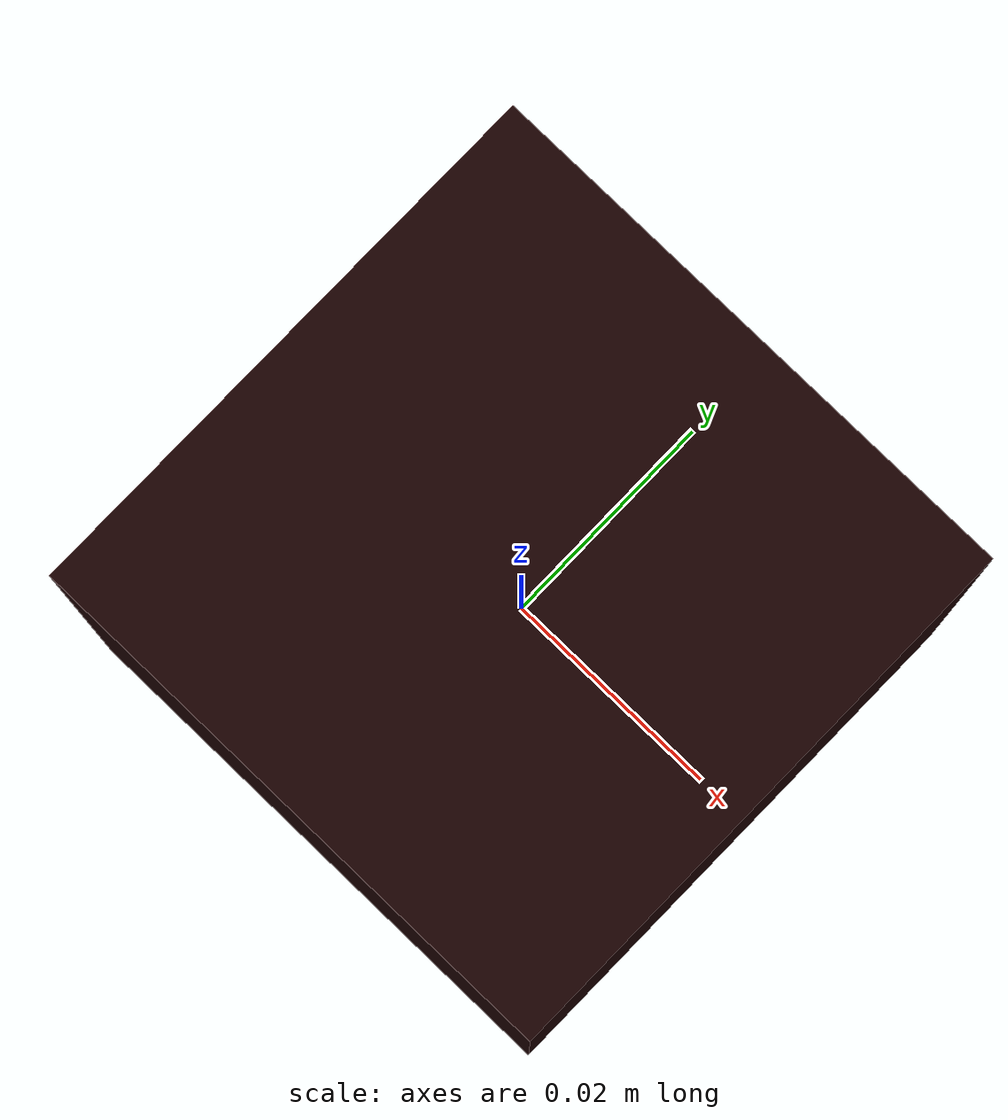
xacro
<?xml version="1.0"?>

<robot name="mobile_manipulator">
<!--################################# BASE #####################################-->
<link name="world"/>

<joint name="fixed" type="fixed">
	<parent link="world"/>
	<child link="base_link"/>
</joint>

<link name="base_link">
    <inertial>
      <origin
        xyz="0.0030946 4.78250032638821E-11 0.053305"
        rpy="0 0 0" />
      <mass
        value="0.1" />
      <inertia
        ixx="0.774276574699151"
        ixy="-1.03781944357671E-10"
        ixz="0.00763014265820928"
        iyy="1.64933255189991"
        iyz="1.09578155845563E-12"
        izz="2.1239326987473" />
    </inertial>
    <visual>
      <origin
        xyz="0 0 0"
        rpy="1.5707963267949 0 3.14" />
      <geometry>
        <box size="0.001 0.001 0.001"/>
      </geometry>
      <material
        name="">
        <color
          rgba="0.79216 0.81961 0.93333 1" />
      </material>
    </visual>
    <collision>
      <origin
        xyz="0 0 0"
        rpy="1.5707963267949 0 3.14" />
      <geometry>
        <box size="0.001 0.001 0.001"/>
      </geometry>
    </collision>
  </link>

<!-- Camera -->
<joint name="camera_joint" type="fixed">
  <axis xyz="0 1 0" />
  <origin xyz="0 0 0" rpy="0 1.57 3.14"/>
  <parent link="base_link"/>
  <child link="camera_link"/>
</joint>

<material
    name="RED">
    <color rgba="0.1 0.0 0.0 1.0" />
</material>

<link name="camera_link">
  <collision>
    <origin xyz="0 0 0" rpy="0 0 0"/>
    <geometry>
      <box size="0.05 0.05 0.05"/>
    </geometry>
  </collision>

  <visual>
    <origin xyz="0 0 0" rpy="0 0 0"/>
    <geometry>
      <box size="0.05 0.05 0.05"/>
    </geometry>
    <material name="RED"/>
  </visual>

  <inertial>
    <mass value="1e-15" />
    <origin xyz="0 0 0" rpy="0 0 0"/>
    <inertia ixx="0" ixy="0" ixz="0" iyy="0" iyz="0" izz="0" />
  </inertial>
</link>

<!-- camera -->
<gazebo reference="camera_link">
  <sensor type="camera" name="camera1">
    <update_rate>30.0</update_rate>
    <camera name="head">
      <horizontal_fov>1.3962634</horizontal_fov>
      <image>
        <width>800</width>
        <height>800</height>
        <format>R8G8B8</format>
      </image>
      <clip>
        <near>0.02</near>
        <far>300</far>
      </clip>
      <noise>
        <type>gaussian</type>
        <mean>0.0</mean>
        <stddev>0.007</stddev>
      </noise>
    </camera>
    <plugin name="camera_controller" filename="libgazebo_ros_camera.so">
      <alwaysOn>true</alwaysOn>
      <updateRate>0.0</updateRate>
      <cameraName>camera1</cameraName>
      <imageTopicName>image_raw</imageTopicName>
      <cameraInfoTopicName>camera_info</cameraInfoTopicName>
      <frameName>camera_link</frameName>
      <hackBaseline>0.07</hackBaseline>
      <distortionK1>0.0</distortionK1>
      <distortionK2>0.0</distortionK2>
      <distortionK3>0.0</distortionK3>
      <distortionT1>0.0</distortionT1>
      <distortionT2>0.0</distortionT2>
    </plugin>
  </sensor>
</gazebo>

</robot>
